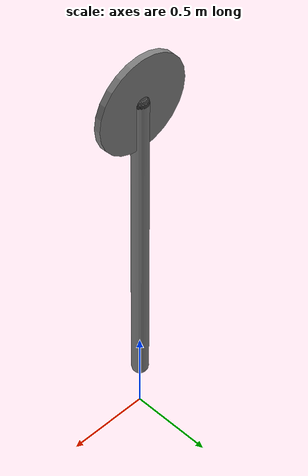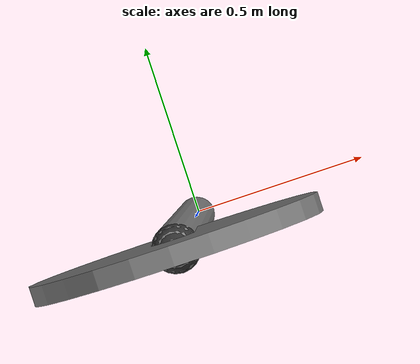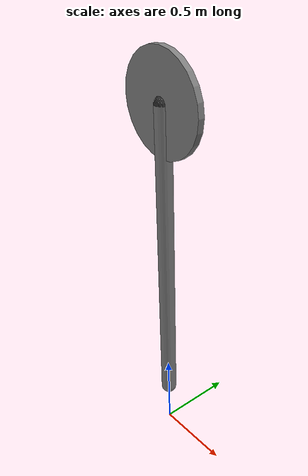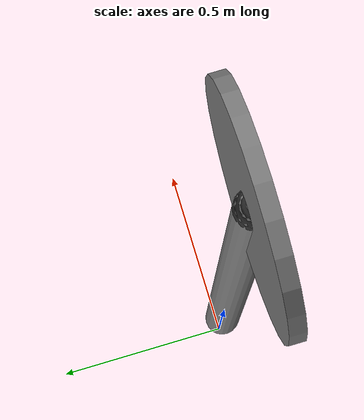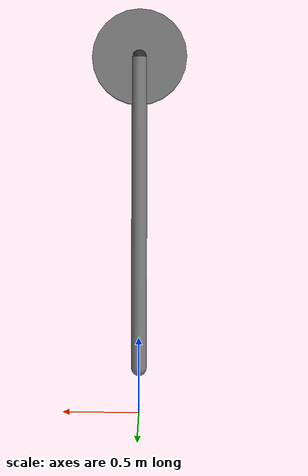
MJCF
<mujoco model="wheel_on_stick">
    <option timestep="0.001" gravity="0 0 -9.81"/>

    <visual>
        <map znear="0.001" zfar="50"/>
    </visual>

    <worldbody>
        <!-- Camera -->
        <camera name="side"
                pos="0 -4 1.5"
                quat="0.9239 0.3827 0 0"/>

        <!-- Stick -->
        <body name="stick" pos="0 0 0.3">
            <joint name="stick_hinge"
                   type="hinge"
                   axis="0 1 0"
                   damping="0.5"/>

            <geom type="capsule"
                  fromto="0 0 0  0 0 2"
                  mass="1.0"
                  size="0.05"
                  contype="0"
                  conaffinity="0"/>

            <!-- Wheel -->
            <body name="wheel" pos="0 0 2">
                <joint name="wheel_spin"
                       type="hinge"
                       axis="0 1 0"
                       damping="0.0"/>

                <!-- Rim -->
                <geom type="cylinder"
                      size="0.3 0.02"
                      mass="3.0"
                      quat="0.7071 0.7071 0 0"
                      contype="0"
                      conaffinity="0"/>

                <!-- Hub -->
                <geom type="sphere"
                      size="0.05"
                      rgba="0.2 0.2 0.2 1"/>
            </body>
        </body>
    </worldbody>

    <actuator>
        <motor joint="wheel_spin" ctrlrange="-1000 1000" />
    </actuator>
</mujoco>
